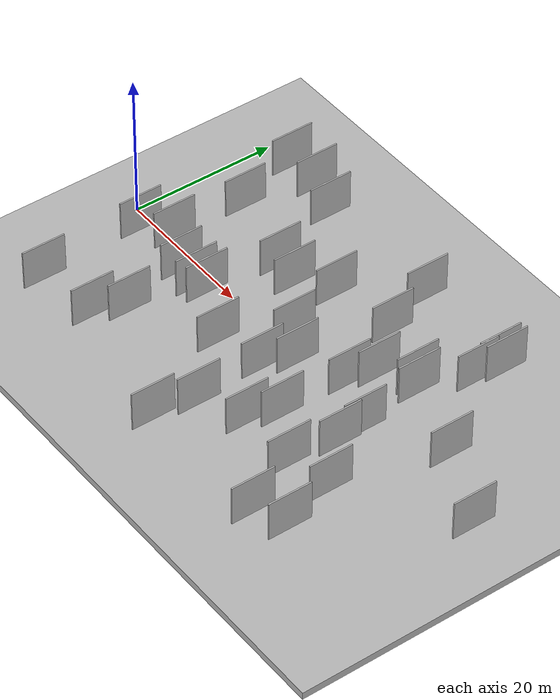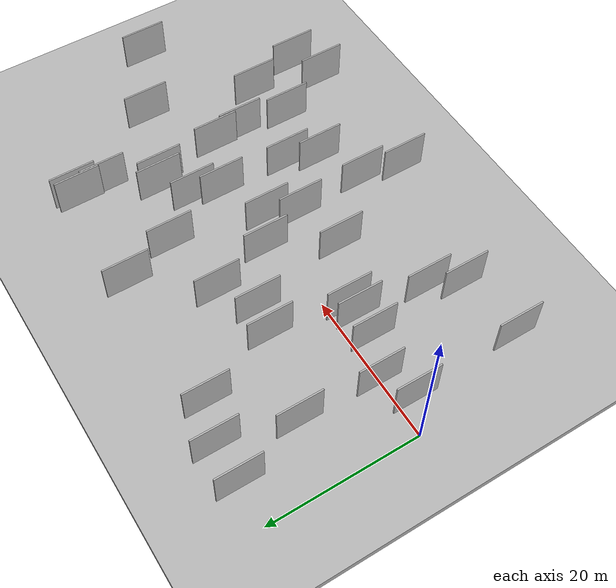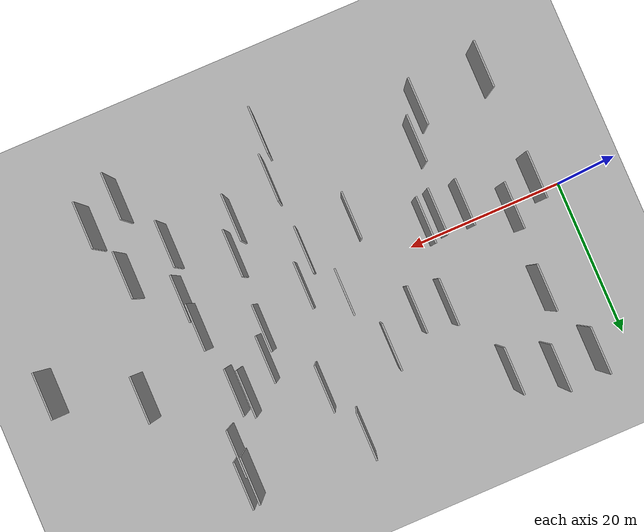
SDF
<?xml version="1.0" encoding="utf-8"?>

<sdf version="1.6">

   <world name="default">

      <gui fullscreen="0">

         <camera name="user_camera">

            <pose>-15 0 4.57585 0 0 0</pose>

            <view_controller>orbit</view_controller>

         </camera>

      </gui>

      <scene>

         <sky>

           <clouds>

             <speed>12</speed>

           </clouds>

         </sky>

         <ambient>0.4 0.4 0.4 1</ambient>

         <background>0.7 0.7 0.7 1</background>

         <shadows>1</shadows>

      </scene>

      <gravity>0 0 -9.8066</gravity>

      <magnetic_field>6e-06 2.3e-05 -4.2e-05</magnetic_field>

      <physics default="0" name="default_physics" type="ode">

         <ode>

            <solver>

               <type>quick</type>

               <iters>10</iters>

               <sor>1.0</sor>

               <use_dynamic_moi_rescaling>0</use_dynamic_moi_rescaling>

            </solver>

            <constraints>

               <cfm>0</cfm>

               <erp>0.2</erp>

               <contact_max_correcting_vel>100</contact_max_correcting_vel>

               <contact_surface_layer>0.001</contact_surface_layer>

            </constraints>

         </ode>

         <max_step_size>0.004</max_step_size>

         <real_time_factor>1</real_time_factor>

         <real_time_update_rate>250</real_time_update_rate>

      </physics>

      <light name="sun" type="directional">

         <cast_shadows>1</cast_shadows>

         <pose>0 0 10 0 0 0</pose>

         <diffuse>0.8 0.8 0.8 1</diffuse>

         <specular>0.2 0.2 0.2 1</specular>

         <attenuation>

            <range>1000</range>

            <constant>0.9</constant>

            <linear>0.01</linear>

            <quadratic>0.001</quadratic>

         </attenuation>

         <direction>-0.5 0.1 -0.9</direction>

      </light>

      <include>

         <name>ground_plane_1</name>

         <uri>model://HANNAS_ground_plane</uri>

         <pose>0 0 0  0 0 0</pose>

      </include>

      <include>

         <name>ground_plane_2</name>

         <uri>model://HANNAS_ground_plane</uri>

         <pose>100 0 0  0 0 0</pose>

      </include>

      <model name="HANNAS_wall_1">

         <static>1</static>

         <pose frame="">31.6280 -19.6521 0.0 0.000000 0.000000 1.570796</pose>

         <link name="link">

            <pose frame="">0 0 3.00 0 0 0</pose>

            <collision name="collision">

               <geometry>

                  <box>

                     <size>6.00 0.2 6.00</size>

                  </box>

               </geometry>

               <max_contacts>10</max_contacts>

               <surface>

                  <contact>

                     <ode/>

                  </contact>

                  <bounce/>

                  <friction>

                     <torsional>

                        <ode/>

                     </torsional>

                     <ode/>

                  </friction>

               </surface>

            </collision>

            <visual name="visual">

               <cast_shadows>0</cast_shadows>

               <geometry>

                  <box>

                     <size>6.00 0.2 6.00</size>

                  </box>

               </geometry>

               <material>

                  <script>

                     <uri>model://HANNAS_wall/materials/scripts</uri>

                     <uri>model://HANNAS_wall/materials/textures</uri>

                     <name>vrc/HANNAS_wall</name>

                  </script>

               </material>

            </visual>

            <self_collide>0</self_collide>

            <enable_wind>0</enable_wind>

            <kinematic>0</kinematic>

         </link>

      </model>

      <model name="HANNAS_wall_2">

         <static>1</static>

         <pose frame="">38.5744 -11.4093 0.0 0.000000 0.000000 1.570796</pose>

         <link name="link">

            <pose frame="">0 0 3.00 0 0 0</pose>

            <collision name="collision">

               <geometry>

                  <box>

                     <size>6.00 0.2 6.00</size>

                  </box>

               </geometry>

               <max_contacts>10</max_contacts>

               <surface>

                  <contact>

                     <ode/>

                  </contact>

                  <bounce/>

                  <friction>

                     <torsional>

                        <ode/>

                     </torsional>

                     <ode/>

                  </friction>

               </surface>

            </collision>

            <visual name="visual">

               <cast_shadows>0</cast_shadows>

               <geometry>

                  <box>

                     <size>6.00 0.2 6.00</size>

                  </box>

               </geometry>

               <material>

                  <script>

                     <uri>model://HANNAS_wall/materials/scripts</uri>

                     <uri>model://HANNAS_wall/materials/textures</uri>

                     <name>vrc/HANNAS_wall</name>

                  </script>

               </material>

            </visual>

            <self_collide>0</self_collide>

            <enable_wind>0</enable_wind>

            <kinematic>0</kinematic>

         </link>

      </model>

      <model name="HANNAS_wall_3">

         <static>1</static>

         <pose frame="">15.2812 18.1419 0.0 0.000000 0.000000 1.570796</pose>

         <link name="link">

            <pose frame="">0 0 3.00 0 0 0</pose>

            <collision name="collision">

               <geometry>

                  <box>

                     <size>6.00 0.2 6.00</size>

                  </box>

               </geometry>

               <max_contacts>10</max_contacts>

               <surface>

                  <contact>

                     <ode/>

                  </contact>

                  <bounce/>

                  <friction>

                     <torsional>

                        <ode/>

                     </torsional>

                     <ode/>

                  </friction>

               </surface>

            </collision>

            <visual name="visual">

               <cast_shadows>0</cast_shadows>

               <geometry>

                  <box>

                     <size>6.00 0.2 6.00</size>

                  </box>

               </geometry>

               <material>

                  <script>

                     <uri>model://HANNAS_wall/materials/scripts</uri>

                     <uri>model://HANNAS_wall/materials/textures</uri>

                     <name>vrc/HANNAS_wall</name>

                  </script>

               </material>

            </visual>

            <self_collide>0</self_collide>

            <enable_wind>0</enable_wind>

            <kinematic>0</kinematic>

         </link>

      </model>

      <model name="HANNAS_wall_4">

         <static>1</static>

         <pose frame="">52.8776 -10.1839 0.0 0.000000 0.000000 1.570796</pose>

         <link name="link">

            <pose frame="">0 0 3.00 0 0 0</pose>

            <collision name="collision">

               <geometry>

                  <box>

                     <size>6.00 0.2 6.00</size>

                  </box>

               </geometry>

               <max_contacts>10</max_contacts>

               <surface>

                  <contact>

                     <ode/>

                  </contact>

                  <bounce/>

                  <friction>

                     <torsional>

                        <ode/>

                     </torsional>

                     <ode/>

                  </friction>

               </surface>

            </collision>

            <visual name="visual">

               <cast_shadows>0</cast_shadows>

               <geometry>

                  <box>

                     <size>6.00 0.2 6.00</size>

                  </box>

               </geometry>

               <material>

                  <script>

                     <uri>model://HANNAS_wall/materials/scripts</uri>

                     <uri>model://HANNAS_wall/materials/textures</uri>

                     <name>vrc/HANNAS_wall</name>

                  </script>

               </material>

            </visual>

            <self_collide>0</self_collide>

            <enable_wind>0</enable_wind>

            <kinematic>0</kinematic>

         </link>

      </model>

      <model name="HANNAS_wall_5">

         <static>1</static>

         <pose frame="">10.1090 19.9687 0.0 0.000000 0.000000 1.570796</pose>

         <link name="link">

            <pose frame="">0 0 3.00 0 0 0</pose>

            <collision name="collision">

               <geometry>

                  <box>

                     <size>6.00 0.2 6.00</size>

                  </box>

               </geometry>

               <max_contacts>10</max_contacts>

               <surface>

                  <contact>

                     <ode/>

                  </contact>

                  <bounce/>

                  <friction>

                     <torsional>

                        <ode/>

                     </torsional>

                     <ode/>

                  </friction>

               </surface>

            </collision>

            <visual name="visual">

               <cast_shadows>0</cast_shadows>

               <geometry>

                  <box>

                     <size>6.00 0.2 6.00</size>

                  </box>

               </geometry>

               <material>

                  <script>

                     <uri>model://HANNAS_wall/materials/scripts</uri>

                     <uri>model://HANNAS_wall/materials/textures</uri>

                     <name>vrc/HANNAS_wall</name>

                  </script>

               </material>

            </visual>

            <self_collide>0</self_collide>

            <enable_wind>0</enable_wind>

            <kinematic>0</kinematic>

         </link>

      </model>

      <model name="HANNAS_wall_6">

         <static>1</static>

         <pose frame="">47.4721 -1.2176 0.0 0.000000 0.000000 1.570796</pose>

         <link name="link">

            <pose frame="">0 0 3.00 0 0 0</pose>

            <collision name="collision">

               <geometry>

                  <box>

                     <size>6.00 0.2 6.00</size>

                  </box>

               </geometry>

               <max_contacts>10</max_contacts>

               <surface>

                  <contact>

                     <ode/>

                  </contact>

                  <bounce/>

                  <friction>

                     <torsional>

                        <ode/>

                     </torsional>

                     <ode/>

                  </friction>

               </surface>

            </collision>

            <visual name="visual">

               <cast_shadows>0</cast_shadows>

               <geometry>

                  <box>

                     <size>6.00 0.2 6.00</size>

                  </box>

               </geometry>

               <material>

                  <script>

                     <uri>model://HANNAS_wall/materials/scripts</uri>

                     <uri>model://HANNAS_wall/materials/textures</uri>

                     <name>vrc/HANNAS_wall</name>

                  </script>

               </material>

            </visual>

            <self_collide>0</self_collide>

            <enable_wind>0</enable_wind>

            <kinematic>0</kinematic>

         </link>

      </model>

      <model name="HANNAS_wall_7">

         <static>1</static>

         <pose frame="">7.5166 0.3726 0.0 0.000000 0.000000 1.570796</pose>

         <link name="link">

            <pose frame="">0 0 3.00 0 0 0</pose>

            <collision name="collision">

               <geometry>

                  <box>

                     <size>6.00 0.2 6.00</size>

                  </box>

               </geometry>

               <max_contacts>10</max_contacts>

               <surface>

                  <contact>

                     <ode/>

                  </contact>

                  <bounce/>

                  <friction>

                     <torsional>

                        <ode/>

                     </torsional>

                     <ode/>

                  </friction>

               </surface>

            </collision>

            <visual name="visual">

               <cast_shadows>0</cast_shadows>

               <geometry>

                  <box>

                     <size>6.00 0.2 6.00</size>

                  </box>

               </geometry>

               <material>

                  <script>

                     <uri>model://HANNAS_wall/materials/scripts</uri>

                     <uri>model://HANNAS_wall/materials/textures</uri>

                     <name>vrc/HANNAS_wall</name>

                  </script>

               </material>

            </visual>

            <self_collide>0</self_collide>

            <enable_wind>0</enable_wind>

            <kinematic>0</kinematic>

         </link>

      </model>

      <model name="HANNAS_wall_8">

         <static>1</static>

         <pose frame="">40.0431 -7.4841 0.0 0.000000 0.000000 1.570796</pose>

         <link name="link">

            <pose frame="">0 0 3.00 0 0 0</pose>

            <collision name="collision">

               <geometry>

                  <box>

                     <size>6.00 0.2 6.00</size>

                  </box>

               </geometry>

               <max_contacts>10</max_contacts>

               <surface>

                  <contact>

                     <ode/>

                  </contact>

                  <bounce/>

                  <friction>

                     <torsional>

                        <ode/>

                     </torsional>

                     <ode/>

                  </friction>

               </surface>

            </collision>

            <visual name="visual">

               <cast_shadows>0</cast_shadows>

               <geometry>

                  <box>

                     <size>6.00 0.2 6.00</size>

                  </box>

               </geometry>

               <material>

                  <script>

                     <uri>model://HANNAS_wall/materials/scripts</uri>

                     <uri>model://HANNAS_wall/materials/textures</uri>

                     <name>vrc/HANNAS_wall</name>

                  </script>

               </material>

            </visual>

            <self_collide>0</self_collide>

            <enable_wind>0</enable_wind>

            <kinematic>0</kinematic>

         </link>

      </model>

      <model name="HANNAS_wall_9">

         <static>1</static>

         <pose frame="">27.2784 9.9694 0.0 0.000000 0.000000 1.570796</pose>

         <link name="link">

            <pose frame="">0 0 3.00 0 0 0</pose>

            <collision name="collision">

               <geometry>

                  <box>

                     <size>6.00 0.2 6.00</size>

                  </box>

               </geometry>

               <max_contacts>10</max_contacts>

               <surface>

                  <contact>

                     <ode/>

                  </contact>

                  <bounce/>

                  <friction>

                     <torsional>

                        <ode/>

                     </torsional>

                     <ode/>

                  </friction>

               </surface>

            </collision>

            <visual name="visual">

               <cast_shadows>0</cast_shadows>

               <geometry>

                  <box>

                     <size>6.00 0.2 6.00</size>

                  </box>

               </geometry>

               <material>

                  <script>

                     <uri>model://HANNAS_wall/materials/scripts</uri>

                     <uri>model://HANNAS_wall/materials/textures</uri>

                     <name>vrc/HANNAS_wall</name>

                  </script>

               </material>

            </visual>

            <self_collide>0</self_collide>

            <enable_wind>0</enable_wind>

            <kinematic>0</kinematic>

         </link>

      </model>

      <model name="HANNAS_wall_10">

         <static>1</static>

         <pose frame="">56.7135 4.0279 0.0 0.000000 0.000000 1.570796</pose>

         <link name="link">

            <pose frame="">0 0 3.00 0 0 0</pose>

            <collision name="collision">

               <geometry>

                  <box>

                     <size>6.00 0.2 6.00</size>

                  </box>

               </geometry>

               <max_contacts>10</max_contacts>

               <surface>

                  <contact>

                     <ode/>

                  </contact>

                  <bounce/>

                  <friction>

                     <torsional>

                        <ode/>

                     </torsional>

                     <ode/>

                  </friction>

               </surface>

            </collision>

            <visual name="visual">

               <cast_shadows>0</cast_shadows>

               <geometry>

                  <box>

                     <size>6.00 0.2 6.00</size>

                  </box>

               </geometry>

               <material>

                  <script>

                     <uri>model://HANNAS_wall/materials/scripts</uri>

                     <uri>model://HANNAS_wall/materials/textures</uri>

                     <name>vrc/HANNAS_wall</name>

                  </script>

               </material>

            </visual>

            <self_collide>0</self_collide>

            <enable_wind>0</enable_wind>

            <kinematic>0</kinematic>

         </link>

      </model>

      <model name="HANNAS_wall_11">

         <static>1</static>

         <pose frame="">22.8336 7.0948 0.0 0.000000 0.000000 1.570796</pose>

         <link name="link">

            <pose frame="">0 0 3.00 0 0 0</pose>

            <collision name="collision">

               <geometry>

                  <box>

                     <size>6.00 0.2 6.00</size>

                  </box>

               </geometry>

               <max_contacts>10</max_contacts>

               <surface>

                  <contact>

                     <ode/>

                  </contact>

                  <bounce/>

                  <friction>

                     <torsional>

                        <ode/>

                     </torsional>

                     <ode/>

                  </friction>

               </surface>

            </collision>

            <visual name="visual">

               <cast_shadows>0</cast_shadows>

               <geometry>

                  <box>

                     <size>6.00 0.2 6.00</size>

                  </box>

               </geometry>

               <material>

                  <script>

                     <uri>model://HANNAS_wall/materials/scripts</uri>

                     <uri>model://HANNAS_wall/materials/textures</uri>

                     <name>vrc/HANNAS_wall</name>

                  </script>

               </material>

            </visual>

            <self_collide>0</self_collide>

            <enable_wind>0</enable_wind>

            <kinematic>0</kinematic>

         </link>

      </model>

      <model name="HANNAS_wall_12">

         <static>1</static>

         <pose frame="">29.8138 1.8615 0.0 0.000000 0.000000 1.570796</pose>

         <link name="link">

            <pose frame="">0 0 3.00 0 0 0</pose>

            <collision name="collision">

               <geometry>

                  <box>

                     <size>6.00 0.2 6.00</size>

                  </box>

               </geometry>

               <max_contacts>10</max_contacts>

               <surface>

                  <contact>

                     <ode/>

                  </contact>

                  <bounce/>

                  <friction>

                     <torsional>

                        <ode/>

                     </torsional>

                     <ode/>

                  </friction>

               </surface>

            </collision>

            <visual name="visual">

               <cast_shadows>0</cast_shadows>

               <geometry>

                  <box>

                     <size>6.00 0.2 6.00</size>

                  </box>

               </geometry>

               <material>

                  <script>

                     <uri>model://HANNAS_wall/materials/scripts</uri>

                     <uri>model://HANNAS_wall/materials/textures</uri>

                     <name>vrc/HANNAS_wall</name>

                  </script>

               </material>

            </visual>

            <self_collide>0</self_collide>

            <enable_wind>0</enable_wind>

            <kinematic>0</kinematic>

         </link>

      </model>

      <model name="HANNAS_wall_13">

         <static>1</static>

         <pose frame="">46.2721 7.5572 0.0 0.000000 0.000000 1.570796</pose>

         <link name="link">

            <pose frame="">0 0 3.00 0 0 0</pose>

            <collision name="collision">

               <geometry>

                  <box>

                     <size>6.00 0.2 6.00</size>

                  </box>

               </geometry>

               <max_contacts>10</max_contacts>

               <surface>

                  <contact>

                     <ode/>

                  </contact>

                  <bounce/>

                  <friction>

                     <torsional>

                        <ode/>

                     </torsional>

                     <ode/>

                  </friction>

               </surface>

            </collision>

            <visual name="visual">

               <cast_shadows>0</cast_shadows>

               <geometry>

                  <box>

                     <size>6.00 0.2 6.00</size>

                  </box>

               </geometry>

               <material>

                  <script>

                     <uri>model://HANNAS_wall/materials/scripts</uri>

                     <uri>model://HANNAS_wall/materials/textures</uri>

                     <name>vrc/HANNAS_wall</name>

                  </script>

               </material>

            </visual>

            <self_collide>0</self_collide>

            <enable_wind>0</enable_wind>

            <kinematic>0</kinematic>

         </link>

      </model>

      <model name="HANNAS_wall_14">

         <static>1</static>

         <pose frame="">46.9325 -11.6271 0.0 0.000000 0.000000 1.570796</pose>

         <link name="link">

            <pose frame="">0 0 3.00 0 0 0</pose>

            <collision name="collision">

               <geometry>

                  <box>

                     <size>6.00 0.2 6.00</size>

                  </box>

               </geometry>

               <max_contacts>10</max_contacts>

               <surface>

                  <contact>

                     <ode/>

                  </contact>

                  <bounce/>

                  <friction>

                     <torsional>

                        <ode/>

                     </torsional>

                     <ode/>

                  </friction>

               </surface>

            </collision>

            <visual name="visual">

               <cast_shadows>0</cast_shadows>

               <geometry>

                  <box>

                     <size>6.00 0.2 6.00</size>

                  </box>

               </geometry>

               <material>

                  <script>

                     <uri>model://HANNAS_wall/materials/scripts</uri>

                     <uri>model://HANNAS_wall/materials/textures</uri>

                     <name>vrc/HANNAS_wall</name>

                  </script>

               </material>

            </visual>

            <self_collide>0</self_collide>

            <enable_wind>0</enable_wind>

            <kinematic>0</kinematic>

         </link>

      </model>

      <model name="HANNAS_wall_15">

         <static>1</static>

         <pose frame="">66.9551 -0.8657 0.0 0.000000 0.000000 1.570796</pose>

         <link name="link">

            <pose frame="">0 0 3.00 0 0 0</pose>

            <collision name="collision">

               <geometry>

                  <box>

                     <size>6.00 0.2 6.00</size>

                  </box>

               </geometry>

               <max_contacts>10</max_contacts>

               <surface>

                  <contact>

                     <ode/>

                  </contact>

                  <bounce/>

                  <friction>

                     <torsional>

                        <ode/>

                     </torsional>

                     <ode/>

                  </friction>

               </surface>

            </collision>

            <visual name="visual">

               <cast_shadows>0</cast_shadows>

               <geometry>

                  <box>

                     <size>6.00 0.2 6.00</size>

                  </box>

               </geometry>

               <material>

                  <script>

                     <uri>model://HANNAS_wall/materials/scripts</uri>

                     <uri>model://HANNAS_wall/materials/textures</uri>

                     <name>vrc/HANNAS_wall</name>

                  </script>

               </material>

            </visual>

            <self_collide>0</self_collide>

            <enable_wind>0</enable_wind>

            <kinematic>0</kinematic>

         </link>

      </model>

      <model name="HANNAS_wall_16">

         <static>1</static>

         <pose frame="">33.9224 -0.7537 0.0 0.000000 0.000000 1.570796</pose>

         <link name="link">

            <pose frame="">0 0 3.00 0 0 0</pose>

            <collision name="collision">

               <geometry>

                  <box>

                     <size>6.00 0.2 6.00</size>

                  </box>

               </geometry>

               <max_contacts>10</max_contacts>

               <surface>

                  <contact>

                     <ode/>

                  </contact>

                  <bounce/>

                  <friction>

                     <torsional>

                        <ode/>

                     </torsional>

                     <ode/>

                  </friction>

               </surface>

            </collision>

            <visual name="visual">

               <cast_shadows>0</cast_shadows>

               <geometry>

                  <box>

                     <size>6.00 0.2 6.00</size>

                  </box>

               </geometry>

               <material>

                  <script>

                     <uri>model://HANNAS_wall/materials/scripts</uri>

                     <uri>model://HANNAS_wall/materials/textures</uri>

                     <name>vrc/HANNAS_wall</name>

                  </script>

               </material>

            </visual>

            <self_collide>0</self_collide>

            <enable_wind>0</enable_wind>

            <kinematic>0</kinematic>

         </link>

      </model>

      <model name="HANNAS_wall_17">

         <static>1</static>

         <pose frame="">13.0358 -15.3507 0.0 0.000000 0.000000 1.570796</pose>

         <link name="link">

            <pose frame="">0 0 3.00 0 0 0</pose>

            <collision name="collision">

               <geometry>

                  <box>

                     <size>6.00 0.2 6.00</size>

                  </box>

               </geometry>

               <max_contacts>10</max_contacts>

               <surface>

                  <contact>

                     <ode/>

                  </contact>

                  <bounce/>

                  <friction>

                     <torsional>

                        <ode/>

                     </torsional>

                     <ode/>

                  </friction>

               </surface>

            </collision>

            <visual name="visual">

               <cast_shadows>0</cast_shadows>

               <geometry>

                  <box>

                     <size>6.00 0.2 6.00</size>

                  </box>

               </geometry>

               <material>

                  <script>

                     <uri>model://HANNAS_wall/materials/scripts</uri>

                     <uri>model://HANNAS_wall/materials/textures</uri>

                     <name>vrc/HANNAS_wall</name>

                  </script>

               </material>

            </visual>

            <self_collide>0</self_collide>

            <enable_wind>0</enable_wind>

            <kinematic>0</kinematic>

         </link>

      </model>

      <model name="HANNAS_wall_18">

         <static>1</static>

         <pose frame="">48.7990 14.2210 0.0 0.000000 0.000000 1.570796</pose>

         <link name="link">

            <pose frame="">0 0 3.00 0 0 0</pose>

            <collision name="collision">

               <geometry>

                  <box>

                     <size>6.00 0.2 6.00</size>

                  </box>

               </geometry>

               <max_contacts>10</max_contacts>

               <surface>

                  <contact>

                     <ode/>

                  </contact>

                  <bounce/>

                  <friction>

                     <torsional>

                        <ode/>

                     </torsional>

                     <ode/>

                  </friction>

               </surface>

            </collision>

            <visual name="visual">

               <cast_shadows>0</cast_shadows>

               <geometry>

                  <box>

                     <size>6.00 0.2 6.00</size>

                  </box>

               </geometry>

               <material>

                  <script>

                     <uri>model://HANNAS_wall/materials/scripts</uri>

                     <uri>model://HANNAS_wall/materials/textures</uri>

                     <name>vrc/HANNAS_wall</name>

                  </script>

               </material>

            </visual>

            <self_collide>0</self_collide>

            <enable_wind>0</enable_wind>

            <kinematic>0</kinematic>

         </link>

      </model>

      <model name="HANNAS_wall_19">

         <static>1</static>

         <pose frame="">12.6919 -2.2716 0.0 0.000000 0.000000 1.570796</pose>

         <link name="link">

            <pose frame="">0 0 3.00 0 0 0</pose>

            <collision name="collision">

               <geometry>

                  <box>

                     <size>6.00 0.2 6.00</size>

                  </box>

               </geometry>

               <max_contacts>10</max_contacts>

               <surface>

                  <contact>

                     <ode/>

                  </contact>

                  <bounce/>

                  <friction>

                     <torsional>

                        <ode/>

                     </torsional>

                     <ode/>

                  </friction>

               </surface>

            </collision>

            <visual name="visual">

               <cast_shadows>0</cast_shadows>

               <geometry>

                  <box>

                     <size>6.00 0.2 6.00</size>

                  </box>

               </geometry>

               <material>

                  <script>

                     <uri>model://HANNAS_wall/materials/scripts</uri>

                     <uri>model://HANNAS_wall/materials/textures</uri>

                     <name>vrc/HANNAS_wall</name>

                  </script>

               </material>

            </visual>

            <self_collide>0</self_collide>

            <enable_wind>0</enable_wind>

            <kinematic>0</kinematic>

         </link>

      </model>

      <model name="HANNAS_wall_20">

         <static>1</static>

         <pose frame="">4.1689 -16.3382 0.0 0.000000 0.000000 1.570796</pose>

         <link name="link">

            <pose frame="">0 0 3.00 0 0 0</pose>

            <collision name="collision">

               <geometry>

                  <box>

                     <size>6.00 0.2 6.00</size>

                  </box>

               </geometry>

               <max_contacts>10</max_contacts>

               <surface>

                  <contact>

                     <ode/>

                  </contact>

                  <bounce/>

                  <friction>

                     <torsional>

                        <ode/>

                     </torsional>

                     <ode/>

                  </friction>

               </surface>

            </collision>

            <visual name="visual">

               <cast_shadows>0</cast_shadows>

               <geometry>

                  <box>

                     <size>6.00 0.2 6.00</size>

                  </box>

               </geometry>

               <material>

                  <script>

                     <uri>model://HANNAS_wall/materials/scripts</uri>

                     <uri>model://HANNAS_wall/materials/textures</uri>

                     <name>vrc/HANNAS_wall</name>

                  </script>

               </material>

            </visual>

            <self_collide>0</self_collide>

            <enable_wind>0</enable_wind>

            <kinematic>0</kinematic>

         </link>

      </model>

      <model name="HANNAS_wall_21">

         <static>1</static>

         <pose frame="">48.5705 17.7041 0.0 0.000000 0.000000 1.570796</pose>

         <link name="link">

            <pose frame="">0 0 3.00 0 0 0</pose>

            <collision name="collision">

               <geometry>

                  <box>

                     <size>6.00 0.2 6.00</size>

                  </box>

               </geometry>

               <max_contacts>10</max_contacts>

               <surface>

                  <contact>

                     <ode/>

                  </contact>

                  <bounce/>

                  <friction>

                     <torsional>

                        <ode/>

                     </torsional>

                     <ode/>

                  </friction>

               </surface>

            </collision>

            <visual name="visual">

               <cast_shadows>0</cast_shadows>

               <geometry>

                  <box>

                     <size>6.00 0.2 6.00</size>

                  </box>

               </geometry>

               <material>

                  <script>

                     <uri>model://HANNAS_wall/materials/scripts</uri>

                     <uri>model://HANNAS_wall/materials/textures</uri>

                     <name>vrc/HANNAS_wall</name>

                  </script>

               </material>

            </visual>

            <self_collide>0</self_collide>

            <enable_wind>0</enable_wind>

            <kinematic>0</kinematic>

         </link>

      </model>

      <model name="HANNAS_wall_22">

         <static>1</static>

         <pose frame="">34.0781 18.3495 0.0 0.000000 0.000000 1.570796</pose>

         <link name="link">

            <pose frame="">0 0 3.00 0 0 0</pose>

            <collision name="collision">

               <geometry>

                  <box>

                     <size>6.00 0.2 6.00</size>

                  </box>

               </geometry>

               <max_contacts>10</max_contacts>

               <surface>

                  <contact>

                     <ode/>

                  </contact>

                  <bounce/>

                  <friction>

                     <torsional>

                        <ode/>

                     </torsional>

                     <ode/>

                  </friction>

               </surface>

            </collision>

            <visual name="visual">

               <cast_shadows>0</cast_shadows>

               <geometry>

                  <box>

                     <size>6.00 0.2 6.00</size>

                  </box>

               </geometry>

               <material>

                  <script>

                     <uri>model://HANNAS_wall/materials/scripts</uri>

                     <uri>model://HANNAS_wall/materials/textures</uri>

                     <name>vrc/HANNAS_wall</name>

                  </script>

               </material>

            </visual>

            <self_collide>0</self_collide>

            <enable_wind>0</enable_wind>

            <kinematic>0</kinematic>

         </link>

      </model>

      <model name="HANNAS_wall_23">

         <static>1</static>

         <pose frame="">36.4114 11.3429 0.0 0.000000 0.000000 1.570796</pose>

         <link name="link">

            <pose frame="">0 0 3.00 0 0 0</pose>

            <collision name="collision">

               <geometry>

                  <box>

                     <size>6.00 0.2 6.00</size>

                  </box>

               </geometry>

               <max_contacts>10</max_contacts>

               <surface>

                  <contact>

                     <ode/>

                  </contact>

                  <bounce/>

                  <friction>

                     <torsional>

                        <ode/>

                     </torsional>

                     <ode/>

                  </friction>

               </surface>

            </collision>

            <visual name="visual">

               <cast_shadows>0</cast_shadows>

               <geometry>

                  <box>

                     <size>6.00 0.2 6.00</size>

                  </box>

               </geometry>

               <material>

                  <script>

                     <uri>model://HANNAS_wall/materials/scripts</uri>

                     <uri>model://HANNAS_wall/materials/textures</uri>

                     <name>vrc/HANNAS_wall</name>

                  </script>

               </material>

            </visual>

            <self_collide>0</self_collide>

            <enable_wind>0</enable_wind>

            <kinematic>0</kinematic>

         </link>

      </model>

      <model name="HANNAS_wall_24">

         <static>1</static>

         <pose frame="">47.7708 -5.0001 0.0 0.000000 0.000000 1.570796</pose>

         <link name="link">

            <pose frame="">0 0 3.00 0 0 0</pose>

            <collision name="collision">

               <geometry>

                  <box>

                     <size>6.00 0.2 6.00</size>

                  </box>

               </geometry>

               <max_contacts>10</max_contacts>

               <surface>

                  <contact>

                     <ode/>

                  </contact>

                  <bounce/>

                  <friction>

                     <torsional>

                        <ode/>

                     </torsional>

                     <ode/>

                  </friction>

               </surface>

            </collision>

            <visual name="visual">

               <cast_shadows>0</cast_shadows>

               <geometry>

                  <box>

                     <size>6.00 0.2 6.00</size>

                  </box>

               </geometry>

               <material>

                  <script>

                     <uri>model://HANNAS_wall/materials/scripts</uri>

                     <uri>model://HANNAS_wall/materials/textures</uri>

                     <name>vrc/HANNAS_wall</name>

                  </script>

               </material>

            </visual>

            <self_collide>0</self_collide>

            <enable_wind>0</enable_wind>

            <kinematic>0</kinematic>

         </link>

      </model>

      <model name="HANNAS_wall_25">

         <static>1</static>

         <pose frame="">32.7070 -13.9955 0.0 0.000000 0.000000 1.570796</pose>

         <link name="link">

            <pose frame="">0 0 3.00 0 0 0</pose>

            <collision name="collision">

               <geometry>

                  <box>

                     <size>6.00 0.2 6.00</size>

                  </box>

               </geometry>

               <max_contacts>10</max_contacts>

               <surface>

                  <contact>

                     <ode/>

                  </contact>

                  <bounce/>

                  <friction>

                     <torsional>

                        <ode/>

                     </torsional>

                     <ode/>

                  </friction>

               </surface>

            </collision>

            <visual name="visual">

               <cast_shadows>0</cast_shadows>

               <geometry>

                  <box>

                     <size>6.00 0.2 6.00</size>

                  </box>

               </geometry>

               <material>

                  <script>

                     <uri>model://HANNAS_wall/materials/scripts</uri>

                     <uri>model://HANNAS_wall/materials/textures</uri>

                     <name>vrc/HANNAS_wall</name>

                  </script>

               </material>

            </visual>

            <self_collide>0</self_collide>

            <enable_wind>0</enable_wind>

            <kinematic>0</kinematic>

         </link>

      </model>

      <model name="HANNAS_wall_26">

         <static>1</static>

         <pose frame="">7.8533 10.7306 0.0 0.000000 0.000000 1.570796</pose>

         <link name="link">

            <pose frame="">0 0 3.00 0 0 0</pose>

            <collision name="collision">

               <geometry>

                  <box>

                     <size>6.00 0.2 6.00</size>

                  </box>

               </geometry>

               <max_contacts>10</max_contacts>

               <surface>

                  <contact>

                     <ode/>

                  </contact>

                  <bounce/>

                  <friction>

                     <torsional>

                        <ode/>

                     </torsional>

                     <ode/>

                  </friction>

               </surface>

            </collision>

            <visual name="visual">

               <cast_shadows>0</cast_shadows>

               <geometry>

                  <box>

                     <size>6.00 0.2 6.00</size>

                  </box>

               </geometry>

               <material>

                  <script>

                     <uri>model://HANNAS_wall/materials/scripts</uri>

                     <uri>model://HANNAS_wall/materials/textures</uri>

                     <name>vrc/HANNAS_wall</name>

                  </script>

               </material>

            </visual>

            <self_collide>0</self_collide>

            <enable_wind>0</enable_wind>

            <kinematic>0</kinematic>

         </link>

      </model>

      <model name="HANNAS_wall_27">

         <static>1</static>

         <pose frame="">14.9118 -11.3887 0.0 0.000000 0.000000 1.570796</pose>

         <link name="link">

            <pose frame="">0 0 3.00 0 0 0</pose>

            <collision name="collision">

               <geometry>

                  <box>

                     <size>6.00 0.2 6.00</size>

                  </box>

               </geometry>

               <max_contacts>10</max_contacts>

               <surface>

                  <contact>

                     <ode/>

                  </contact>

                  <bounce/>

                  <friction>

                     <torsional>

                        <ode/>

                     </torsional>

                     <ode/>

                  </friction>

               </surface>

            </collision>

            <visual name="visual">

               <cast_shadows>0</cast_shadows>

               <geometry>

                  <box>

                     <size>6.00 0.2 6.00</size>

                  </box>

               </geometry>

               <material>

                  <script>

                     <uri>model://HANNAS_wall/materials/scripts</uri>

                     <uri>model://HANNAS_wall/materials/textures</uri>

                     <name>vrc/HANNAS_wall</name>

                  </script>

               </material>

            </visual>

            <self_collide>0</self_collide>

            <enable_wind>0</enable_wind>

            <kinematic>0</kinematic>

         </link>

      </model>

      <model name="HANNAS_wall_28">

         <static>1</static>

         <pose frame="">41.4027 5.4585 0.0 0.000000 0.000000 1.570796</pose>

         <link name="link">

            <pose frame="">0 0 3.00 0 0 0</pose>

            <collision name="collision">

               <geometry>

                  <box>

                     <size>6.00 0.2 6.00</size>

                  </box>

               </geometry>

               <max_contacts>10</max_contacts>

               <surface>

                  <contact>

                     <ode/>

                  </contact>

                  <bounce/>

                  <friction>

                     <torsional>

                        <ode/>

                     </torsional>

                     <ode/>

                  </friction>

               </surface>

            </collision>

            <visual name="visual">

               <cast_shadows>0</cast_shadows>

               <geometry>

                  <box>

                     <size>6.00 0.2 6.00</size>

                  </box>

               </geometry>

               <material>

                  <script>

                     <uri>model://HANNAS_wall/materials/scripts</uri>

                     <uri>model://HANNAS_wall/materials/textures</uri>

                     <name>vrc/HANNAS_wall</name>

                  </script>

               </material>

            </visual>

            <self_collide>0</self_collide>

            <enable_wind>0</enable_wind>

            <kinematic>0</kinematic>

         </link>

      </model>

      <model name="HANNAS_wall_29">

         <static>1</static>

         <pose frame="">17.7166 -2.1370 0.0 0.000000 0.000000 1.570796</pose>

         <link name="link">

            <pose frame="">0 0 3.00 0 0 0</pose>

            <collision name="collision">

               <geometry>

                  <box>

                     <size>6.00 0.2 6.00</size>

                  </box>

               </geometry>

               <max_contacts>10</max_contacts>

               <surface>

                  <contact>

                     <ode/>

                  </contact>

                  <bounce/>

                  <friction>

                     <torsional>

                        <ode/>

                     </torsional>

                     <ode/>

                  </friction>

               </surface>

            </collision>

            <visual name="visual">

               <cast_shadows>0</cast_shadows>

               <geometry>

                  <box>

                     <size>6.00 0.2 6.00</size>

                  </box>

               </geometry>

               <material>

                  <script>

                     <uri>model://HANNAS_wall/materials/scripts</uri>

                     <uri>model://HANNAS_wall/materials/textures</uri>

                     <name>vrc/HANNAS_wall</name>

                  </script>

               </material>

            </visual>

            <self_collide>0</self_collide>

            <enable_wind>0</enable_wind>

            <kinematic>0</kinematic>

         </link>

      </model>

      <model name="HANNAS_wall_30">

         <static>1</static>

         <pose frame="">50.5153 -19.2708 0.0 0.000000 0.000000 1.570796</pose>

         <link name="link">

            <pose frame="">0 0 3.00 0 0 0</pose>

            <collision name="collision">

               <geometry>

                  <box>

                     <size>6.00 0.2 6.00</size>

                  </box>

               </geometry>

               <max_contacts>10</max_contacts>

               <surface>

                  <contact>

                     <ode/>

                  </contact>

                  <bounce/>

                  <friction>

                     <torsional>

                        <ode/>

                     </torsional>

                     <ode/>

                  </friction>

               </surface>

            </collision>

            <visual name="visual">

               <cast_shadows>0</cast_shadows>

               <geometry>

                  <box>

                     <size>6.00 0.2 6.00</size>

                  </box>

               </geometry>

               <material>

                  <script>

                     <uri>model://HANNAS_wall/materials/scripts</uri>

                     <uri>model://HANNAS_wall/materials/textures</uri>

                     <name>vrc/HANNAS_wall</name>

                  </script>

               </material>

            </visual>

            <self_collide>0</self_collide>

            <enable_wind>0</enable_wind>

            <kinematic>0</kinematic>

         </link>

      </model>

      <model name="HANNAS_wall_31">

         <static>1</static>

         <pose frame="">40.3507 1.9333 0.0 0.000000 0.000000 1.570796</pose>

         <link name="link">

            <pose frame="">0 0 3.00 0 0 0</pose>

            <collision name="collision">

               <geometry>

                  <box>

                     <size>6.00 0.2 6.00</size>

                  </box>

               </geometry>

               <max_contacts>10</max_contacts>

               <surface>

                  <contact>

                     <ode/>

                  </contact>

                  <bounce/>

                  <friction>

                     <torsional>

                        <ode/>

                     </torsional>

                     <ode/>

                  </friction>

               </surface>

            </collision>

            <visual name="visual">

               <cast_shadows>0</cast_shadows>

               <geometry>

                  <box>

                     <size>6.00 0.2 6.00</size>

                  </box>

               </geometry>

               <material>

                  <script>

                     <uri>model://HANNAS_wall/materials/scripts</uri>

                     <uri>model://HANNAS_wall/materials/textures</uri>

                     <name>vrc/HANNAS_wall</name>

                  </script>

               </material>

            </visual>

            <self_collide>0</self_collide>

            <enable_wind>0</enable_wind>

            <kinematic>0</kinematic>

         </link>

      </model>

      <model name="HANNAS_wall_32">

         <static>1</static>

         <pose frame="">3.6520 -1.9091 0.0 0.000000 0.000000 1.570796</pose>

         <link name="link">

            <pose frame="">0 0 3.00 0 0 0</pose>

            <collision name="collision">

               <geometry>

                  <box>

                     <size>6.00 0.2 6.00</size>

                  </box>

               </geometry>

               <max_contacts>10</max_contacts>

               <surface>

                  <contact>

                     <ode/>

                  </contact>

                  <bounce/>

                  <friction>

                     <torsional>

                        <ode/>

                     </torsional>

                     <ode/>

                  </friction>

               </surface>

            </collision>

            <visual name="visual">

               <cast_shadows>0</cast_shadows>

               <geometry>

                  <box>

                     <size>6.00 0.2 6.00</size>

                  </box>

               </geometry>

               <material>

                  <script>

                     <uri>model://HANNAS_wall/materials/scripts</uri>

                     <uri>model://HANNAS_wall/materials/textures</uri>

                     <name>vrc/HANNAS_wall</name>

                  </script>

               </material>

            </visual>

            <self_collide>0</self_collide>

            <enable_wind>0</enable_wind>

            <kinematic>0</kinematic>

         </link>

      </model>

      <model name="HANNAS_wall_33">

         <static>1</static>

         <pose frame="">25.5192 -6.1026 0.0 0.000000 0.000000 1.570796</pose>

         <link name="link">

            <pose frame="">0 0 3.00 0 0 0</pose>

            <collision name="collision">

               <geometry>

                  <box>

                     <size>6.00 0.2 6.00</size>

                  </box>

               </geometry>

               <max_contacts>10</max_contacts>

               <surface>

                  <contact>

                     <ode/>

                  </contact>

                  <bounce/>

                  <friction>

                     <torsional>

                        <ode/>

                     </torsional>

                     <ode/>

                  </friction>

               </surface>

            </collision>

            <visual name="visual">

               <cast_shadows>0</cast_shadows>

               <geometry>

                  <box>

                     <size>6.00 0.2 6.00</size>

                  </box>

               </geometry>

               <material>

                  <script>

                     <uri>model://HANNAS_wall/materials/scripts</uri>

                     <uri>model://HANNAS_wall/materials/textures</uri>

                     <name>vrc/HANNAS_wall</name>

                  </script>

               </material>

            </visual>

            <self_collide>0</self_collide>

            <enable_wind>0</enable_wind>

            <kinematic>0</kinematic>

         </link>

      </model>

      <model name="HANNAS_wall_34">

         <static>1</static>

         <pose frame="">32.2289 -4.5750 0.0 0.000000 0.000000 1.570796</pose>

         <link name="link">

            <pose frame="">0 0 3.00 0 0 0</pose>

            <collision name="collision">

               <geometry>

                  <box>

                     <size>6.00 0.2 6.00</size>

                  </box>

               </geometry>

               <max_contacts>10</max_contacts>

               <surface>

                  <contact>

                     <ode/>

                  </contact>

                  <bounce/>

                  <friction>

                     <torsional>

                        <ode/>

                     </torsional>

                     <ode/>

                  </friction>

               </surface>

            </collision>

            <visual name="visual">

               <cast_shadows>0</cast_shadows>

               <geometry>

                  <box>

                     <size>6.00 0.2 6.00</size>

                  </box>

               </geometry>

               <material>

                  <script>

                     <uri>model://HANNAS_wall/materials/scripts</uri>

                     <uri>model://HANNAS_wall/materials/textures</uri>

                     <name>vrc/HANNAS_wall</name>

                  </script>

               </material>

            </visual>

            <self_collide>0</self_collide>

            <enable_wind>0</enable_wind>

            <kinematic>0</kinematic>

         </link>

      </model>

      <model name="HANNAS_wall_35">

         <static>1</static>

         <pose frame="">45.0458 8.2757 0.0 0.000000 0.000000 1.570796</pose>

         <link name="link">

            <pose frame="">0 0 3.00 0 0 0</pose>

            <collision name="collision">

               <geometry>

                  <box>

                     <size>6.00 0.2 6.00</size>

                  </box>

               </geometry>

               <max_contacts>10</max_contacts>

               <surface>

                  <contact>

                     <ode/>

                  </contact>

                  <bounce/>

                  <friction>

                     <torsional>

                        <ode/>

                     </torsional>

                     <ode/>

                  </friction>

               </surface>

            </collision>

            <visual name="visual">

               <cast_shadows>0</cast_shadows>

               <geometry>

                  <box>

                     <size>6.00 0.2 6.00</size>

                  </box>

               </geometry>

               <material>

                  <script>

                     <uri>model://HANNAS_wall/materials/scripts</uri>

                     <uri>model://HANNAS_wall/materials/textures</uri>

                     <name>vrc/HANNAS_wall</name>

                  </script>

               </material>

            </visual>

            <self_collide>0</self_collide>

            <enable_wind>0</enable_wind>

            <kinematic>0</kinematic>

         </link>

      </model>

      <model name="HANNAS_wall_36">

         <static>1</static>

         <pose frame="">19.0700 7.7338 0.0 0.000000 0.000000 1.570796</pose>

         <link name="link">

            <pose frame="">0 0 3.00 0 0 0</pose>

            <collision name="collision">

               <geometry>

                  <box>

                     <size>6.00 0.2 6.00</size>

                  </box>

               </geometry>

               <max_contacts>10</max_contacts>

               <surface>

                  <contact>

                     <ode/>

                  </contact>

                  <bounce/>

                  <friction>

                     <torsional>

                        <ode/>

                     </torsional>

                     <ode/>

                  </friction>

               </surface>

            </collision>

            <visual name="visual">

               <cast_shadows>0</cast_shadows>

               <geometry>

                  <box>

                     <size>6.00 0.2 6.00</size>

                  </box>

               </geometry>

               <material>

                  <script>

                     <uri>model://HANNAS_wall/materials/scripts</uri>

                     <uri>model://HANNAS_wall/materials/textures</uri>

                     <name>vrc/HANNAS_wall</name>

                  </script>

               </material>

            </visual>

            <self_collide>0</self_collide>

            <enable_wind>0</enable_wind>

            <kinematic>0</kinematic>

         </link>

      </model>

      <model name="HANNAS_wall_37">

         <static>1</static>

         <pose frame="">16.0698 -2.4873 0.0 0.000000 0.000000 1.570796</pose>

         <link name="link">

            <pose frame="">0 0 3.00 0 0 0</pose>

            <collision name="collision">

               <geometry>

                  <box>

                     <size>6.00 0.2 6.00</size>

                  </box>

               </geometry>

               <max_contacts>10</max_contacts>

               <surface>

                  <contact>

                     <ode/>

                  </contact>

                  <bounce/>

                  <friction>

                     <torsional>

                        <ode/>

                     </torsional>

                     <ode/>

                  </friction>

               </surface>

            </collision>

            <visual name="visual">

               <cast_shadows>0</cast_shadows>

               <geometry>

                  <box>

                     <size>6.00 0.2 6.00</size>

                  </box>

               </geometry>

               <material>

                  <script>

                     <uri>model://HANNAS_wall/materials/scripts</uri>

                     <uri>model://HANNAS_wall/materials/textures</uri>

                     <name>vrc/HANNAS_wall</name>

                  </script>

               </material>

            </visual>

            <self_collide>0</self_collide>

            <enable_wind>0</enable_wind>

            <kinematic>0</kinematic>

         </link>

      </model>

      <model name="HANNAS_wall_38">

         <static>1</static>

         <pose frame="">54.8943 -17.4092 0.0 0.000000 0.000000 1.570796</pose>

         <link name="link">

            <pose frame="">0 0 3.00 0 0 0</pose>

            <collision name="collision">

               <geometry>

                  <box>

                     <size>6.00 0.2 6.00</size>

                  </box>

               </geometry>

               <max_contacts>10</max_contacts>

               <surface>

                  <contact>

                     <ode/>

                  </contact>

                  <bounce/>

                  <friction>

                     <torsional>

                        <ode/>

                     </torsional>

                     <ode/>

                  </friction>

               </surface>

            </collision>

            <visual name="visual">

               <cast_shadows>0</cast_shadows>

               <geometry>

                  <box>

                     <size>6.00 0.2 6.00</size>

                  </box>

               </geometry>

               <material>

                  <script>

                     <uri>model://HANNAS_wall/materials/scripts</uri>

                     <uri>model://HANNAS_wall/materials/textures</uri>

                     <name>vrc/HANNAS_wall</name>

                  </script>

               </material>

            </visual>

            <self_collide>0</self_collide>

            <enable_wind>0</enable_wind>

            <kinematic>0</kinematic>

         </link>

      </model>

      <model name="HANNAS_wall_39">

         <static>1</static>

         <pose frame="">5.0437 19.9270 0.0 0.000000 0.000000 1.570796</pose>

         <link name="link">

            <pose frame="">0 0 3.00 0 0 0</pose>

            <collision name="collision">

               <geometry>

                  <box>

                     <size>6.00 0.2 6.00</size>

                  </box>

               </geometry>

               <max_contacts>10</max_contacts>

               <surface>

                  <contact>

                     <ode/>

                  </contact>

                  <bounce/>

                  <friction>

                     <torsional>

                        <ode/>

                     </torsional>

                     <ode/>

                  </friction>

               </surface>

            </collision>

            <visual name="visual">

               <cast_shadows>0</cast_shadows>

               <geometry>

                  <box>

                     <size>6.00 0.2 6.00</size>

                  </box>

               </geometry>

               <material>

                  <script>

                     <uri>model://HANNAS_wall/materials/scripts</uri>

                     <uri>model://HANNAS_wall/materials/textures</uri>

                     <name>vrc/HANNAS_wall</name>

                  </script>

               </material>

            </visual>

            <self_collide>0</self_collide>

            <enable_wind>0</enable_wind>

            <kinematic>0</kinematic>

         </link>

      </model>

      <model name="HANNAS_wall_40">

         <static>1</static>

         <pose frame="">49.4837 17.9348 0.0 0.000000 0.000000 1.570796</pose>

         <link name="link">

            <pose frame="">0 0 3.00 0 0 0</pose>

            <collision name="collision">

               <geometry>

                  <box>

                     <size>6.00 0.2 6.00</size>

                  </box>

               </geometry>

               <max_contacts>10</max_contacts>

               <surface>

                  <contact>

                     <ode/>

                  </contact>

                  <bounce/>

                  <friction>

                     <torsional>

                        <ode/>

                     </torsional>

                     <ode/>

                  </friction>

               </surface>

            </collision>

            <visual name="visual">

               <cast_shadows>0</cast_shadows>

               <geometry>

                  <box>

                     <size>6.00 0.2 6.00</size>

                  </box>

               </geometry>

               <material>

                  <script>

                     <uri>model://HANNAS_wall/materials/scripts</uri>

                     <uri>model://HANNAS_wall/materials/textures</uri>

                     <name>vrc/HANNAS_wall</name>

                  </script>

               </material>

            </visual>

            <self_collide>0</self_collide>

            <enable_wind>0</enable_wind>

            <kinematic>0</kinematic>

         </link>

      </model>

   </world>

</sdf>
